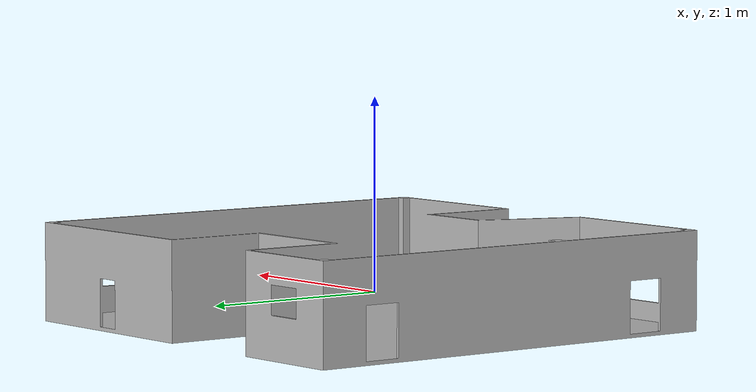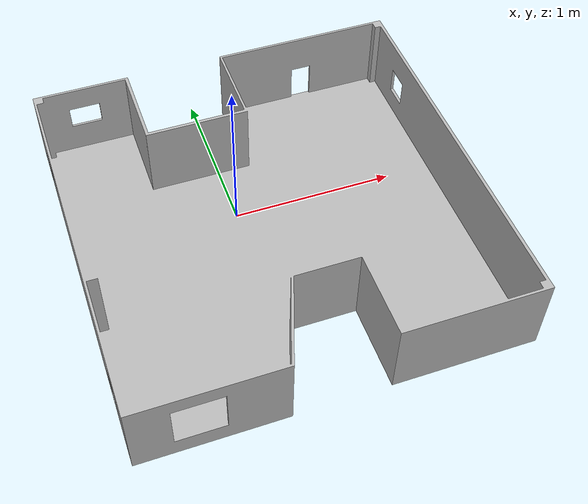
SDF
<?xml version="1.0"?>
<sdf version="1.5">
  <model name="Demo">
    <pose>0 0 0 0 0 0</pose>
    <static>true</static>
    <link name="link">
      <collision name="collision">
        <geometry>
          <mesh>
            <uri>model://demo/meshes/demo_model.stl</uri>
            <scale>1 1 1</scale>
          </mesh>
        </geometry>
      </collision>
      <visual name="visual">
        <geometry>
          <mesh>
            <uri>model://demo/meshes/demo_model.stl</uri>
            <scale>1 1 1</scale>
          </mesh>
        </geometry>
      </visual>
    </link>
  </model>
</sdf>
